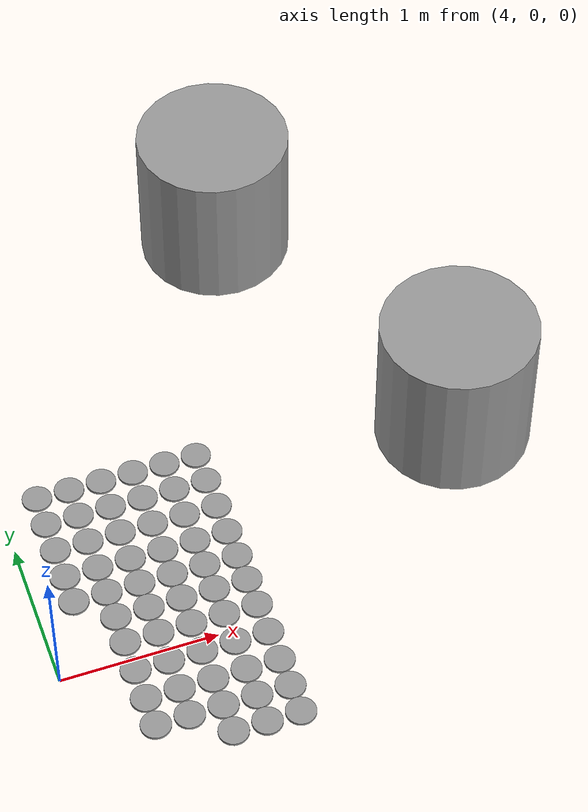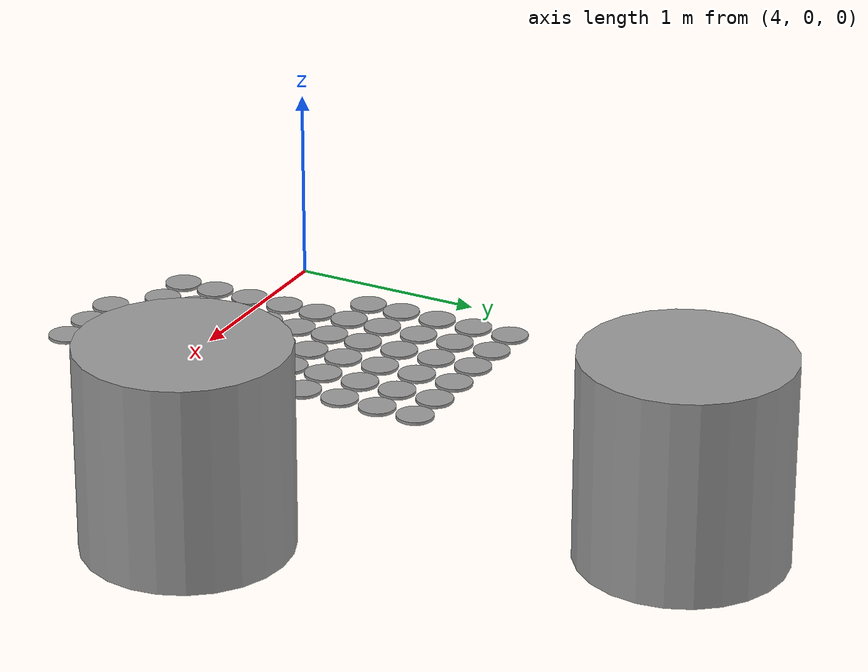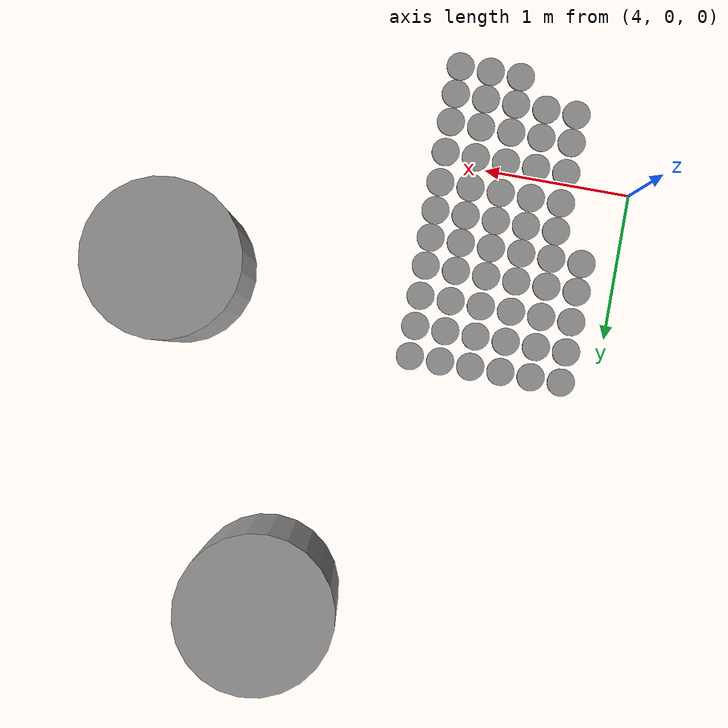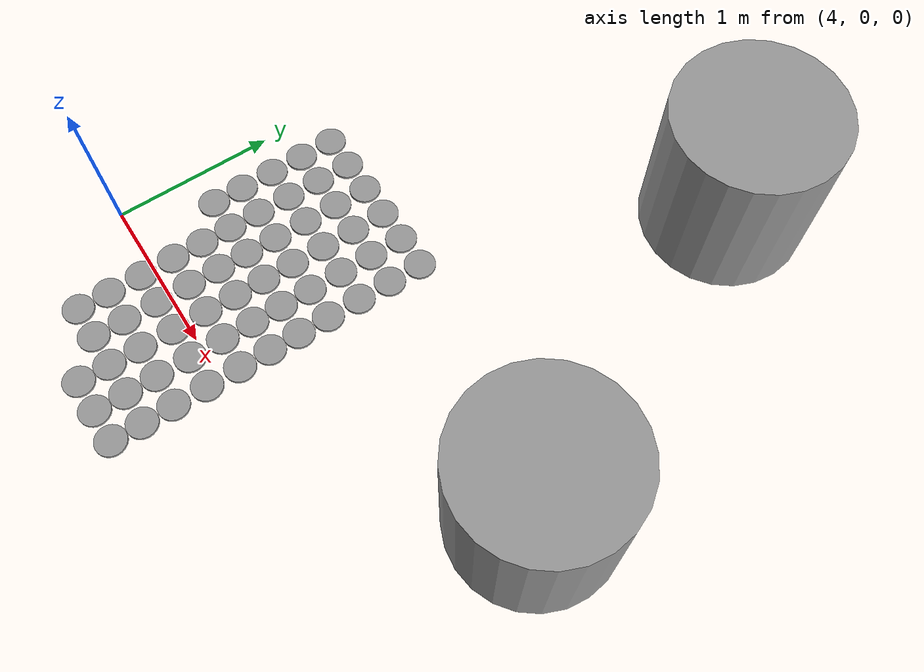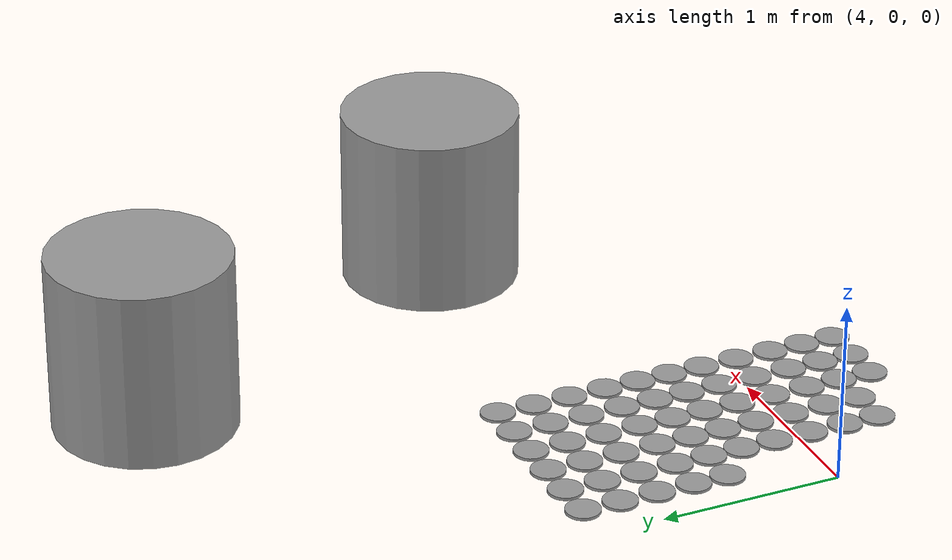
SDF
<sdf version="1.6">
 <world name="default">
  <model name="unit_cylinder_clone_220">
   <pose>4.24 0.515077 0.008117 0 -0 0</pose>
   <link name="link">
    <inertial>
     <mass>1</mass>
     <inertia><ixx>0.145833</ixx><ixy>0</ixy><ixz>0</ixz><iyy>0.145833</iyy><iyz>0</iyz><izz>0.125</izz></inertia>
    </inertial>
    <collision name="collision">
     <geometry><cylinder><radius>0.0950718</radius><length>0.0162339</length></cylinder></geometry>
     <max_contacts>5</max_contacts>
    </collision>
    <visual name="visual">
     <geometry><cylinder><radius>0.0950718</radius><length>0.0162339</length></cylinder></geometry>
     <material>
      <script><name>Gazebo/Grey</name><uri>file://media/materials/scripts/gazebo.material</uri></script>
     </material>
    </visual>
   </link>
  </model>
  <model name="unit_cylinder_clone_221">
   <pose>4.24 0.71 0.008117 0 -0 0</pose>
   <link name="link">
    <inertial>
     <mass>1</mass>
     <inertia><ixx>0.145833</ixx><ixy>0</ixy><ixz>0</ixz><iyy>0.145833</iyy><iyz>0</iyz><izz>0.125</izz></inertia>
    </inertial>
    <collision name="collision">
     <geometry><cylinder><radius>0.0950718</radius><length>0.0162339</length></cylinder></geometry>
     <max_contacts>5</max_contacts>
    </collision>
    <visual name="visual">
     <geometry><cylinder><radius>0.0950718</radius><length>0.0162339</length></cylinder></geometry>
     <material>
      <script><name>Gazebo/Grey</name><uri>file://media/materials/scripts/gazebo.material</uri></script>
     </material>
    </visual>
   </link>
  </model>
  <model name="unit_cylinder_clone_222">
   <pose>4.24 0.92 0.008117 0 -0 0</pose>
   <link name="link">
    <inertial>
     <mass>1</mass>
     <inertia><ixx>0.145833</ixx><ixy>0</ixy><ixz>0</ixz><iyy>0.145833</iyy><iyz>0</iyz><izz>0.125</izz></inertia>
    </inertial>
    <collision name="collision">
     <geometry><cylinder><radius>0.0950718</radius><length>0.0162339</length></cylinder></geometry>
     <max_contacts>5</max_contacts>
    </collision>
    <visual name="visual">
     <geometry><cylinder><radius>0.0950718</radius><length>0.0162339</length></cylinder></geometry>
     <material>
      <script><name>Gazebo/Grey</name><uri>file://media/materials/scripts/gazebo.material</uri></script>
     </material>
    </visual>
   </link>
  </model>
  <model name="unit_cylinder_clone_223">
   <pose>4.24 1.13 0.008117 0 -0 0</pose>
   <link name="link">
    <inertial>
     <mass>1</mass>
     <inertia><ixx>0.145833</ixx><ixy>0</ixy><ixz>0</ixz><iyy>0.145833</iyy><iyz>0</iyz><izz>0.125</izz></inertia>
    </inertial>
    <collision name="collision">
     <geometry><cylinder><radius>0.0950718</radius><length>0.0162339</length></cylinder></geometry>
     <max_contacts>5</max_contacts>
    </collision>
    <visual name="visual">
     <geometry><cylinder><radius>0.0950718</radius><length>0.0162339</length></cylinder></geometry>
     <material>
      <script><name>Gazebo/Grey</name><uri>file://media/materials/scripts/gazebo.material</uri></script>
     </material>
    </visual>
   </link>
  </model>
  <model name="unit_cylinder_clone_224">
   <pose>4.24 1.34 0.008117 0 -0 0</pose>
   <link name="link">
    <inertial>
     <mass>1</mass>
     <inertia><ixx>0.145833</ixx><ixy>0</ixy><ixz>0</ixz><iyy>0.145833</iyy><iyz>0</iyz><izz>0.125</izz></inertia>
    </inertial>
    <collision name="collision">
     <geometry><cylinder><radius>0.0950718</radius><length>0.0162339</length></cylinder></geometry>
     <max_contacts>5</max_contacts>
    </collision>
    <visual name="visual">
     <geometry><cylinder><radius>0.0950718</radius><length>0.0162339</length></cylinder></geometry>
     <material>
      <script><name>Gazebo/Grey</name><uri>file://media/materials/scripts/gazebo.material</uri></script>
     </material>
    </visual>
   </link>
  </model>
  <model name="unit_cylinder_clone_225">
   <pose>4.45 0.515077 0.008117 0 -0 0</pose>
   <link name="link">
    <inertial>
     <mass>1</mass>
     <inertia><ixx>0.145833</ixx><ixy>0</ixy><ixz>0</ixz><iyy>0.145833</iyy><iyz>0</iyz><izz>0.125</izz></inertia>
    </inertial>
    <collision name="collision">
     <geometry><cylinder><radius>0.0950718</radius><length>0.0162339</length></cylinder></geometry>
     <max_contacts>5</max_contacts>
    </collision>
    <visual name="visual">
     <geometry><cylinder><radius>0.0950718</radius><length>0.0162339</length></cylinder></geometry>
     <material>
      <script><name>Gazebo/Grey</name><uri>file://media/materials/scripts/gazebo.material</uri></script>
     </material>
    </visual>
   </link>
  </model>
  <model name="unit_cylinder_clone_226">
   <pose>4.45 0.71 0.008117 0 -0 0</pose>
   <link name="link">
    <inertial>
     <mass>1</mass>
     <inertia><ixx>0.145833</ixx><ixy>0</ixy><ixz>0</ixz><iyy>0.145833</iyy><iyz>0</iyz><izz>0.125</izz></inertia>
    </inertial>
    <collision name="collision">
     <geometry><cylinder><radius>0.0950718</radius><length>0.0162339</length></cylinder></geometry>
     <max_contacts>5</max_contacts>
    </collision>
    <visual name="visual">
     <geometry><cylinder><radius>0.0950718</radius><length>0.0162339</length></cylinder></geometry>
     <material>
      <script><name>Gazebo/Grey</name><uri>file://media/materials/scripts/gazebo.material</uri></script>
     </material>
    </visual>
   </link>
  </model>
  <model name="unit_cylinder_clone_227">
   <pose>4.45 0.92 0.008117 0 -0 0</pose>
   <link name="link">
    <inertial>
     <mass>1</mass>
     <inertia><ixx>0.145833</ixx><ixy>0</ixy><ixz>0</ixz><iyy>0.145833</iyy><iyz>0</iyz><izz>0.125</izz></inertia>
    </inertial>
    <collision name="collision">
     <geometry><cylinder><radius>0.0950718</radius><length>0.0162339</length></cylinder></geometry>
     <max_contacts>5</max_contacts>
    </collision>
    <visual name="visual">
     <geometry><cylinder><radius>0.0950718</radius><length>0.0162339</length></cylinder></geometry>
     <material>
      <script><name>Gazebo/Grey</name><uri>file://media/materials/scripts/gazebo.material</uri></script>
     </material>
    </visual>
   </link>
  </model>
  <model name="unit_cylinder_clone_228">
   <pose>4.45 1.13 0.008117 0 -0 0</pose>
   <link name="link">
    <inertial>
     <mass>1</mass>
     <inertia><ixx>0.145833</ixx><ixy>0</ixy><ixz>0</ixz><iyy>0.145833</iyy><iyz>0</iyz><izz>0.125</izz></inertia>
    </inertial>
    <collision name="collision">
     <geometry><cylinder><radius>0.0950718</radius><length>0.0162339</length></cylinder></geometry>
     <max_contacts>5</max_contacts>
    </collision>
    <visual name="visual">
     <geometry><cylinder><radius>0.0950718</radius><length>0.0162339</length></cylinder></geometry>
     <material>
      <script><name>Gazebo/Grey</name><uri>file://media/materials/scripts/gazebo.material</uri></script>
     </material>
    </visual>
   </link>
  </model>
  <model name="unit_cylinder_clone_229">
   <pose>4.45 1.34 0.008117 0 -0 0</pose>
   <link name="link">
    <inertial>
     <mass>1</mass>
     <inertia><ixx>0.145833</ixx><ixy>0</ixy><ixz>0</ixz><iyy>0.145833</iyy><iyz>0</iyz><izz>0.125</izz></inertia>
    </inertial>
    <collision name="collision">
     <geometry><cylinder><radius>0.0950718</radius><length>0.0162339</length></cylinder></geometry>
     <max_contacts>5</max_contacts>
    </collision>
    <visual name="visual">
     <geometry><cylinder><radius>0.0950718</radius><length>0.0162339</length></cylinder></geometry>
     <material>
      <script><name>Gazebo/Grey</name><uri>file://media/materials/scripts/gazebo.material</uri></script>
     </material>
    </visual>
   </link>
  </model>
  <model name="unit_cylinder_clone_230">
   <pose>4.66 0.515077 0.008117 0 -0 0</pose>
   <link name="link">
    <inertial>
     <mass>1</mass>
     <inertia><ixx>0.145833</ixx><ixy>0</ixy><ixz>0</ixz><iyy>0.145833</iyy><iyz>0</iyz><izz>0.125</izz></inertia>
    </inertial>
    <collision name="collision">
     <geometry><cylinder><radius>0.0950718</radius><length>0.0162339</length></cylinder></geometry>
     <max_contacts>5</max_contacts>
    </collision>
    <visual name="visual">
     <geometry><cylinder><radius>0.0950718</radius><length>0.0162339</length></cylinder></geometry>
     <material>
      <script><name>Gazebo/Grey</name><uri>file://media/materials/scripts/gazebo.material</uri></script>
     </material>
    </visual>
   </link>
  </model>
  <model name="unit_cylinder_clone_231">
   <pose>4.66 0.71 0.008117 0 -0 0</pose>
   <link name="link">
    <inertial>
     <mass>1</mass>
     <inertia><ixx>0.145833</ixx><ixy>0</ixy><ixz>0</ixz><iyy>0.145833</iyy><iyz>0</iyz><izz>0.125</izz></inertia>
    </inertial>
    <collision name="collision">
     <geometry><cylinder><radius>0.0950718</radius><length>0.0162339</length></cylinder></geometry>
     <max_contacts>5</max_contacts>
    </collision>
    <visual name="visual">
     <geometry><cylinder><radius>0.0950718</radius><length>0.0162339</length></cylinder></geometry>
     <material>
      <script><name>Gazebo/Grey</name><uri>file://media/materials/scripts/gazebo.material</uri></script>
     </material>
    </visual>
   </link>
  </model>
  <model name="unit_cylinder_clone_232">
   <pose>4.66 0.92 0.008117 0 -0 0</pose>
   <link name="link">
    <inertial>
     <mass>1</mass>
     <inertia><ixx>0.145833</ixx><ixy>0</ixy><ixz>0</ixz><iyy>0.145833</iyy><iyz>0</iyz><izz>0.125</izz></inertia>
    </inertial>
    <collision name="collision">
     <geometry><cylinder><radius>0.0950718</radius><length>0.0162339</length></cylinder></geometry>
     <max_contacts>5</max_contacts>
    </collision>
    <visual name="visual">
     <geometry><cylinder><radius>0.0950718</radius><length>0.0162339</length></cylinder></geometry>
     <material>
      <script><name>Gazebo/Grey</name><uri>file://media/materials/scripts/gazebo.material</uri></script>
     </material>
    </visual>
   </link>
  </model>
  <model name="unit_cylinder_clone_233">
   <pose>4.66 1.13 0.008117 0 -0 0</pose>
   <link name="link">
    <inertial>
     <mass>1</mass>
     <inertia><ixx>0.145833</ixx><ixy>0</ixy><ixz>0</ixz><iyy>0.145833</iyy><iyz>0</iyz><izz>0.125</izz></inertia>
    </inertial>
    <collision name="collision">
     <geometry><cylinder><radius>0.0950718</radius><length>0.0162339</length></cylinder></geometry>
     <max_contacts>5</max_contacts>
    </collision>
    <visual name="visual">
     <geometry><cylinder><radius>0.0950718</radius><length>0.0162339</length></cylinder></geometry>
     <material>
      <script><name>Gazebo/Grey</name><uri>file://media/materials/scripts/gazebo.material</uri></script>
     </material>
    </visual>
   </link>
  </model>
  <model name="unit_cylinder_clone_234">
   <pose>4.66 1.34 0.008117 0 -0 0</pose>
   <link name="link">
    <inertial>
     <mass>1</mass>
     <inertia><ixx>0.145833</ixx><ixy>0</ixy><ixz>0</ixz><iyy>0.145833</iyy><iyz>0</iyz><izz>0.125</izz></inertia>
    </inertial>
    <collision name="collision">
     <geometry><cylinder><radius>0.0950718</radius><length>0.0162339</length></cylinder></geometry>
     <max_contacts>5</max_contacts>
    </collision>
    <visual name="visual">
     <geometry><cylinder><radius>0.0950718</radius><length>0.0162339</length></cylinder></geometry>
     <material>
      <script><name>Gazebo/Grey</name><uri>file://media/materials/scripts/gazebo.material</uri></script>
     </material>
    </visual>
   </link>
  </model>
  <model name="unit_cylinder_clone_235">
   <pose>4.87 0.515077 0.008117 0 -0 0</pose>
   <link name="link">
    <inertial>
     <mass>1</mass>
     <inertia><ixx>0.145833</ixx><ixy>0</ixy><ixz>0</ixz><iyy>0.145833</iyy><iyz>0</iyz><izz>0.125</izz></inertia>
    </inertial>
    <collision name="collision">
     <geometry><cylinder><radius>0.0950718</radius><length>0.0162339</length></cylinder></geometry>
     <max_contacts>5</max_contacts>
    </collision>
    <visual name="visual">
     <geometry><cylinder><radius>0.0950718</radius><length>0.0162339</length></cylinder></geometry>
     <material>
      <script><name>Gazebo/Grey</name><uri>file://media/materials/scripts/gazebo.material</uri></script>
     </material>
    </visual>
   </link>
  </model>
  <model name="unit_cylinder_clone_236">
   <pose>4.87 0.71 0.008117 0 -0 0</pose>
   <link name="link">
    <inertial>
     <mass>1</mass>
     <inertia><ixx>0.145833</ixx><ixy>0</ixy><ixz>0</ixz><iyy>0.145833</iyy><iyz>0</iyz><izz>0.125</izz></inertia>
    </inertial>
    <collision name="collision">
     <geometry><cylinder><radius>0.0950718</radius><length>0.0162339</length></cylinder></geometry>
     <max_contacts>5</max_contacts>
    </collision>
    <visual name="visual">
     <geometry><cylinder><radius>0.0950718</radius><length>0.0162339</length></cylinder></geometry>
     <material>
      <script><name>Gazebo/Grey</name><uri>file://media/materials/scripts/gazebo.material</uri></script>
     </material>
    </visual>
   </link>
  </model>
  <model name="unit_cylinder_clone_237">
   <pose>4.87 0.92 0.008117 0 -0 0</pose>
   <link name="link">
    <inertial>
     <mass>1</mass>
     <inertia><ixx>0.145833</ixx><ixy>0</ixy><ixz>0</ixz><iyy>0.145833</iyy><iyz>0</iyz><izz>0.125</izz></inertia>
    </inertial>
    <collision name="collision">
     <geometry><cylinder><radius>0.0950718</radius><length>0.0162339</length></cylinder></geometry>
     <max_contacts>5</max_contacts>
    </collision>
    <visual name="visual">
     <geometry><cylinder><radius>0.0950718</radius><length>0.0162339</length></cylinder></geometry>
     <material>
      <script><name>Gazebo/Grey</name><uri>file://media/materials/scripts/gazebo.material</uri></script>
     </material>
    </visual>
   </link>
  </model>
  <model name="unit_cylinder_clone_238">
   <pose>4.87 1.13 0.008117 0 -0 0</pose>
   <link name="link">
    <inertial>
     <mass>1</mass>
     <inertia><ixx>0.145833</ixx><ixy>0</ixy><ixz>0</ixz><iyy>0.145833</iyy><iyz>0</iyz><izz>0.125</izz></inertia>
    </inertial>
    <collision name="collision">
     <geometry><cylinder><radius>0.0950718</radius><length>0.0162339</length></cylinder></geometry>
     <max_contacts>5</max_contacts>
    </collision>
    <visual name="visual">
     <geometry><cylinder><radius>0.0950718</radius><length>0.0162339</length></cylinder></geometry>
     <material>
      <script><name>Gazebo/Grey</name><uri>file://media/materials/scripts/gazebo.material</uri></script>
     </material>
    </visual>
   </link>
  </model>
  <model name="unit_cylinder_clone_239">
   <pose>4.87 1.34 0.008117 0 -0 0</pose>
   <link name="link">
    <inertial>
     <mass>1</mass>
     <inertia><ixx>0.145833</ixx><ixy>0</ixy><ixz>0</ixz><iyy>0.145833</iyy><iyz>0</iyz><izz>0.125</izz></inertia>
    </inertial>
    <collision name="collision">
     <geometry><cylinder><radius>0.0950718</radius><length>0.0162339</length></cylinder></geometry>
     <max_contacts>5</max_contacts>
    </collision>
    <visual name="visual">
     <geometry><cylinder><radius>0.0950718</radius><length>0.0162339</length></cylinder></geometry>
     <material>
      <script><name>Gazebo/Grey</name><uri>file://media/materials/scripts/gazebo.material</uri></script>
     </material>
    </visual>
   </link>
  </model>
  <model name="unit_cylinder_clone_240">
   <pose>5.08 0.515077 0.008117 0 -0 0</pose>
   <link name="link">
    <inertial>
     <mass>1</mass>
     <inertia><ixx>0.145833</ixx><ixy>0</ixy><ixz>0</ixz><iyy>0.145833</iyy><iyz>0</iyz><izz>0.125</izz></inertia>
    </inertial>
    <collision name="collision">
     <geometry><cylinder><radius>0.0950718</radius><length>0.0162339</length></cylinder></geometry>
     <max_contacts>5</max_contacts>
    </collision>
    <visual name="visual">
     <geometry><cylinder><radius>0.0950718</radius><length>0.0162339</length></cylinder></geometry>
     <material>
      <script><name>Gazebo/Grey</name><uri>file://media/materials/scripts/gazebo.material</uri></script>
     </material>
    </visual>
   </link>
  </model>
  <model name="unit_cylinder_clone_241">
   <pose>5.08 0.71 0.008117 0 -0 0</pose>
   <link name="link">
    <inertial>
     <mass>1</mass>
     <inertia><ixx>0.145833</ixx><ixy>0</ixy><ixz>0</ixz><iyy>0.145833</iyy><iyz>0</iyz><izz>0.125</izz></inertia>
    </inertial>
    <collision name="collision">
     <geometry><cylinder><radius>0.0950718</radius><length>0.0162339</length></cylinder></geometry>
     <max_contacts>5</max_contacts>
    </collision>
    <visual name="visual">
     <geometry><cylinder><radius>0.0950718</radius><length>0.0162339</length></cylinder></geometry>
     <material>
      <script><name>Gazebo/Grey</name><uri>file://media/materials/scripts/gazebo.material</uri></script>
     </material>
    </visual>
   </link>
  </model>
  <model name="unit_cylinder_clone_242">
   <pose>5.08 0.92 0.008117 0 -0 0</pose>
   <link name="link">
    <inertial>
     <mass>1</mass>
     <inertia><ixx>0.145833</ixx><ixy>0</ixy><ixz>0</ixz><iyy>0.145833</iyy><iyz>0</iyz><izz>0.125</izz></inertia>
    </inertial>
    <collision name="collision">
     <geometry><cylinder><radius>0.0950718</radius><length>0.0162339</length></cylinder></geometry>
     <max_contacts>5</max_contacts>
    </collision>
    <visual name="visual">
     <geometry><cylinder><radius>0.0950718</radius><length>0.0162339</length></cylinder></geometry>
     <material>
      <script><name>Gazebo/Grey</name><uri>file://media/materials/scripts/gazebo.material</uri></script>
     </material>
    </visual>
   </link>
  </model>
  <model name="unit_cylinder_clone_243">
   <pose>5.08 1.13 0.008117 0 -0 0</pose>
   <link name="link">
    <inertial>
     <mass>1</mass>
     <inertia><ixx>0.145833</ixx><ixy>0</ixy><ixz>0</ixz><iyy>0.145833</iyy><iyz>0</iyz><izz>0.125</izz></inertia>
    </inertial>
    <collision name="collision">
     <geometry><cylinder><radius>0.0950718</radius><length>0.0162339</length></cylinder></geometry>
     <max_contacts>5</max_contacts>
    </collision>
    <visual name="visual">
     <geometry><cylinder><radius>0.0950718</radius><length>0.0162339</length></cylinder></geometry>
     <material>
      <script><name>Gazebo/Grey</name><uri>file://media/materials/scripts/gazebo.material</uri></script>
     </material>
    </visual>
   </link>
  </model>
  <model name="unit_cylinder_clone_244">
   <pose>5.08 1.34 0.008117 0 -0 0</pose>
   <link name="link">
    <inertial>
     <mass>1</mass>
     <inertia><ixx>0.145833</ixx><ixy>0</ixy><ixz>0</ixz><iyy>0.145833</iyy><iyz>0</iyz><izz>0.125</izz></inertia>
    </inertial>
    <collision name="collision">
     <geometry><cylinder><radius>0.0950718</radius><length>0.0162339</length></cylinder></geometry>
     <max_contacts>5</max_contacts>
    </collision>
    <visual name="visual">
     <geometry><cylinder><radius>0.0950718</radius><length>0.0162339</length></cylinder></geometry>
     <material>
      <script><name>Gazebo/Grey</name><uri>file://media/materials/scripts/gazebo.material</uri></script>
     </material>
    </visual>
   </link>
  </model>
  <model name="unit_cylinder_clone_245">
   <pose>5.29 0.515077 0.008117 0 -0 0</pose>
   <link name="link">
    <inertial>
     <mass>1</mass>
     <inertia><ixx>0.145833</ixx><ixy>0</ixy><ixz>0</ixz><iyy>0.145833</iyy><iyz>0</iyz><izz>0.125</izz></inertia>
    </inertial>
    <collision name="collision">
     <geometry><cylinder><radius>0.0950718</radius><length>0.0162339</length></cylinder></geometry>
     <max_contacts>5</max_contacts>
    </collision>
    <visual name="visual">
     <geometry><cylinder><radius>0.0950718</radius><length>0.0162339</length></cylinder></geometry>
     <material>
      <script><name>Gazebo/Grey</name><uri>file://media/materials/scripts/gazebo.material</uri></script>
     </material>
    </visual>
   </link>
  </model>
  <model name="unit_cylinder_clone_246">
   <pose>5.29 0.71 0.008117 0 -0 0</pose>
   <link name="link">
    <inertial>
     <mass>1</mass>
     <inertia><ixx>0.145833</ixx><ixy>0</ixy><ixz>0</ixz><iyy>0.145833</iyy><iyz>0</iyz><izz>0.125</izz></inertia>
    </inertial>
    <collision name="collision">
     <geometry><cylinder><radius>0.0950718</radius><length>0.0162339</length></cylinder></geometry>
     <max_contacts>5</max_contacts>
    </collision>
    <visual name="visual">
     <geometry><cylinder><radius>0.0950718</radius><length>0.0162339</length></cylinder></geometry>
     <material>
      <script><name>Gazebo/Grey</name><uri>file://media/materials/scripts/gazebo.material</uri></script>
     </material>
    </visual>
   </link>
  </model>
  <model name="unit_cylinder_clone_247">
   <pose>5.29 0.92 0.008117 0 -0 0</pose>
   <link name="link">
    <inertial>
     <mass>1</mass>
     <inertia><ixx>0.145833</ixx><ixy>0</ixy><ixz>0</ixz><iyy>0.145833</iyy><iyz>0</iyz><izz>0.125</izz></inertia>
    </inertial>
    <collision name="collision">
     <geometry><cylinder><radius>0.0950718</radius><length>0.0162339</length></cylinder></geometry>
     <max_contacts>5</max_contacts>
    </collision>
    <visual name="visual">
     <geometry><cylinder><radius>0.0950718</radius><length>0.0162339</length></cylinder></geometry>
     <material>
      <script><name>Gazebo/Grey</name><uri>file://media/materials/scripts/gazebo.material</uri></script>
     </material>
    </visual>
   </link>
  </model>
  <model name="unit_cylinder_clone_248">
   <pose>5.29 1.13 0.008117 0 -0 0</pose>
   <link name="link">
    <inertial>
     <mass>1</mass>
     <inertia><ixx>0.145833</ixx><ixy>0</ixy><ixz>0</ixz><iyy>0.145833</iyy><iyz>0</iyz><izz>0.125</izz></inertia>
    </inertial>
    <collision name="collision">
     <geometry><cylinder><radius>0.0950718</radius><length>0.0162339</length></cylinder></geometry>
     <max_contacts>5</max_contacts>
    </collision>
    <visual name="visual">
     <geometry><cylinder><radius>0.0950718</radius><length>0.0162339</length></cylinder></geometry>
     <material>
      <script><name>Gazebo/Grey</name><uri>file://media/materials/scripts/gazebo.material</uri></script>
     </material>
    </visual>
   </link>
  </model>
  <model name="unit_cylinder_clone_249">
   <pose>5.29 1.34 0.008117 0 -0 0</pose>
   <link name="link">
    <inertial>
     <mass>1</mass>
     <inertia><ixx>0.145833</ixx><ixy>0</ixy><ixz>0</ixz><iyy>0.145833</iyy><iyz>0</iyz><izz>0.125</izz></inertia>
    </inertial>
    <collision name="collision">
     <geometry><cylinder><radius>0.0950718</radius><length>0.0162339</length></cylinder></geometry>
     <max_contacts>5</max_contacts>
    </collision>
    <visual name="visual">
     <geometry><cylinder><radius>0.0950718</radius><length>0.0162339</length></cylinder></geometry>
     <material>
      <script><name>Gazebo/Grey</name><uri>file://media/materials/scripts/gazebo.material</uri></script>
     </material>
    </visual>
   </link>
  </model>
  <model name="unit_cylinder_clone_475">
   <pose>4.45 -0.484923 0.008117 0 -0 0</pose>
   <link name="link">
    <inertial>
     <mass>1</mass>
     <inertia><ixx>0.145833</ixx><ixy>0</ixy><ixz>0</ixz><iyy>0.145833</iyy><iyz>0</iyz><izz>0.125</izz></inertia>
    </inertial>
    <collision name="collision">
     <geometry><cylinder><radius>0.0950718</radius><length>0.0162339</length></cylinder></geometry>
     <max_contacts>5</max_contacts>
    </collision>
    <visual name="visual">
     <geometry><cylinder><radius>0.0950718</radius><length>0.0162339</length></cylinder></geometry>
     <material>
      <script><name>Gazebo/Grey</name><uri>file://media/materials/scripts/gazebo.material</uri></script>
     </material>
    </visual>
   </link>
  </model>
  <model name="unit_cylinder_clone_476">
   <pose>4.45 -0.29 0.008117 0 -0 0</pose>
   <link name="link">
    <inertial>
     <mass>1</mass>
     <inertia><ixx>0.145833</ixx><ixy>0</ixy><ixz>0</ixz><iyy>0.145833</iyy><iyz>0</iyz><izz>0.125</izz></inertia>
    </inertial>
    <collision name="collision">
     <geometry><cylinder><radius>0.0950718</radius><length>0.0162339</length></cylinder></geometry>
     <max_contacts>5</max_contacts>
    </collision>
    <visual name="visual">
     <geometry><cylinder><radius>0.0950718</radius><length>0.0162339</length></cylinder></geometry>
     <material>
      <script><name>Gazebo/Grey</name><uri>file://media/materials/scripts/gazebo.material</uri></script>
     </material>
    </visual>
   </link>
  </model>
  <model name="unit_cylinder_clone_477">
   <pose>4.45 -0.08 0.008117 0 -0 0</pose>
   <link name="link">
    <inertial>
     <mass>1</mass>
     <inertia><ixx>0.145833</ixx><ixy>0</ixy><ixz>0</ixz><iyy>0.145833</iyy><iyz>0</iyz><izz>0.125</izz></inertia>
    </inertial>
    <collision name="collision">
     <geometry><cylinder><radius>0.0950718</radius><length>0.0162339</length></cylinder></geometry>
     <max_contacts>5</max_contacts>
    </collision>
    <visual name="visual">
     <geometry><cylinder><radius>0.0950718</radius><length>0.0162339</length></cylinder></geometry>
     <material>
      <script><name>Gazebo/Grey</name><uri>file://media/materials/scripts/gazebo.material</uri></script>
     </material>
    </visual>
   </link>
  </model>
  <model name="unit_cylinder_clone_478">
   <pose>4.45 0.13 0.008117 0 -0 0</pose>
   <link name="link">
    <inertial>
     <mass>1</mass>
     <inertia><ixx>0.145833</ixx><ixy>0</ixy><ixz>0</ixz><iyy>0.145833</iyy><iyz>0</iyz><izz>0.125</izz></inertia>
    </inertial>
    <collision name="collision">
     <geometry><cylinder><radius>0.0950718</radius><length>0.0162339</length></cylinder></geometry>
     <max_contacts>5</max_contacts>
    </collision>
    <visual name="visual">
     <geometry><cylinder><radius>0.0950718</radius><length>0.0162339</length></cylinder></geometry>
     <material>
      <script><name>Gazebo/Grey</name><uri>file://media/materials/scripts/gazebo.material</uri></script>
     </material>
    </visual>
   </link>
  </model>
  <model name="unit_cylinder_clone_479">
   <pose>4.45 0.324923 0.008117 -0 -0 -0</pose>
   <link name="link">
    <inertial>
     <mass>1</mass>
     <inertia><ixx>0.145833</ixx><ixy>0</ixy><ixz>0</ixz><iyy>0.145833</iyy><iyz>0</iyz><izz>0.125</izz></inertia>
    </inertial>
    <collision name="collision">
     <geometry><cylinder><radius>0.0950718</radius><length>0.0162339</length></cylinder></geometry>
     <max_contacts>5</max_contacts>
    </collision>
    <visual name="visual">
     <geometry><cylinder><radius>0.0950718</radius><length>0.0162339</length></cylinder></geometry>
     <material>
      <script><name>Gazebo/Grey</name><uri>file://media/materials/scripts/gazebo.material</uri></script>
     </material>
    </visual>
   </link>
  </model>
  <model name="unit_cylinder_clone_480">
   <pose>4.66 -0.484923 0.008117 0 -0 0</pose>
   <link name="link">
    <inertial>
     <mass>1</mass>
     <inertia><ixx>0.145833</ixx><ixy>0</ixy><ixz>0</ixz><iyy>0.145833</iyy><iyz>0</iyz><izz>0.125</izz></inertia>
    </inertial>
    <collision name="collision">
     <geometry><cylinder><radius>0.0950718</radius><length>0.0162339</length></cylinder></geometry>
     <max_contacts>5</max_contacts>
    </collision>
    <visual name="visual">
     <geometry><cylinder><radius>0.0950718</radius><length>0.0162339</length></cylinder></geometry>
     <material>
      <script><name>Gazebo/Grey</name><uri>file://media/materials/scripts/gazebo.material</uri></script>
     </material>
    </visual>
   </link>
  </model>
  <model name="unit_cylinder_clone_481">
   <pose>4.66 -0.29 0.008117 0 -0 0</pose>
   <link name="link">
    <inertial>
     <mass>1</mass>
     <inertia><ixx>0.145833</ixx><ixy>0</ixy><ixz>0</ixz><iyy>0.145833</iyy><iyz>0</iyz><izz>0.125</izz></inertia>
    </inertial>
    <collision name="collision">
     <geometry><cylinder><radius>0.0950718</radius><length>0.0162339</length></cylinder></geometry>
     <max_contacts>5</max_contacts>
    </collision>
    <visual name="visual">
     <geometry><cylinder><radius>0.0950718</radius><length>0.0162339</length></cylinder></geometry>
     <material>
      <script><name>Gazebo/Grey</name><uri>file://media/materials/scripts/gazebo.material</uri></script>
     </material>
    </visual>
   </link>
  </model>
  <model name="unit_cylinder_clone_482">
   <pose>4.66 -0.08 0.008117 0 -0 0</pose>
   <link name="link">
    <inertial>
     <mass>1</mass>
     <inertia><ixx>0.145833</ixx><ixy>0</ixy><ixz>0</ixz><iyy>0.145833</iyy><iyz>0</iyz><izz>0.125</izz></inertia>
    </inertial>
    <collision name="collision">
     <geometry><cylinder><radius>0.0950718</radius><length>0.0162339</length></cylinder></geometry>
     <max_contacts>5</max_contacts>
    </collision>
    <visual name="visual">
     <geometry><cylinder><radius>0.0950718</radius><length>0.0162339</length></cylinder></geometry>
     <material>
      <script><name>Gazebo/Grey</name><uri>file://media/materials/scripts/gazebo.material</uri></script>
     </material>
    </visual>
   </link>
  </model>
  <model name="unit_cylinder_clone_483">
   <pose>4.66 0.13 0.008117 0 -0 0</pose>
   <link name="link">
    <inertial>
     <mass>1</mass>
     <inertia><ixx>0.145833</ixx><ixy>0</ixy><ixz>0</ixz><iyy>0.145833</iyy><iyz>0</iyz><izz>0.125</izz></inertia>
    </inertial>
    <collision name="collision">
     <geometry><cylinder><radius>0.0950718</radius><length>0.0162339</length></cylinder></geometry>
     <max_contacts>5</max_contacts>
    </collision>
    <visual name="visual">
     <geometry><cylinder><radius>0.0950718</radius><length>0.0162339</length></cylinder></geometry>
     <material>
      <script><name>Gazebo/Grey</name><uri>file://media/materials/scripts/gazebo.material</uri></script>
     </material>
    </visual>
   </link>
  </model>
  <model name="unit_cylinder_clone_484">
   <pose>4.66 0.324923 0.008117 -0 -0 -0</pose>
   <link name="link">
    <inertial>
     <mass>1</mass>
     <inertia><ixx>0.145833</ixx><ixy>0</ixy><ixz>0</ixz><iyy>0.145833</iyy><iyz>0</iyz><izz>0.125</izz></inertia>
    </inertial>
    <collision name="collision">
     <geometry><cylinder><radius>0.0950718</radius><length>0.0162339</length></cylinder></geometry>
     <max_contacts>5</max_contacts>
    </collision>
    <visual name="visual">
     <geometry><cylinder><radius>0.0950718</radius><length>0.0162339</length></cylinder></geometry>
     <material>
      <script><name>Gazebo/Grey</name><uri>file://media/materials/scripts/gazebo.material</uri></script>
     </material>
    </visual>
   </link>
  </model>
  <model name="unit_cylinder_clone_485">
   <pose>4.87 -0.484923 0.008117 0 -0 0</pose>
   <link name="link">
    <inertial>
     <mass>1</mass>
     <inertia><ixx>0.145833</ixx><ixy>0</ixy><ixz>0</ixz><iyy>0.145833</iyy><iyz>0</iyz><izz>0.125</izz></inertia>
    </inertial>
    <collision name="collision">
     <geometry><cylinder><radius>0.0950718</radius><length>0.0162339</length></cylinder></geometry>
     <max_contacts>5</max_contacts>
    </collision>
    <visual name="visual">
     <geometry><cylinder><radius>0.0950718</radius><length>0.0162339</length></cylinder></geometry>
     <material>
      <script><name>Gazebo/Grey</name><uri>file://media/materials/scripts/gazebo.material</uri></script>
     </material>
    </visual>
   </link>
  </model>
  <model name="unit_cylinder_clone_486">
   <pose>4.87 -0.29 0.008117 0 -0 0</pose>
   <link name="link">
    <inertial>
     <mass>1</mass>
     <inertia><ixx>0.145833</ixx><ixy>0</ixy><ixz>0</ixz><iyy>0.145833</iyy><iyz>0</iyz><izz>0.125</izz></inertia>
    </inertial>
    <collision name="collision">
     <geometry><cylinder><radius>0.0950718</radius><length>0.0162339</length></cylinder></geometry>
     <max_contacts>5</max_contacts>
    </collision>
    <visual name="visual">
     <geometry><cylinder><radius>0.0950718</radius><length>0.0162339</length></cylinder></geometry>
     <material>
      <script><name>Gazebo/Grey</name><uri>file://media/materials/scripts/gazebo.material</uri></script>
     </material>
    </visual>
   </link>
  </model>
  <model name="unit_cylinder_clone_487">
   <pose>4.87 -0.08 0.008117 0 -0 0</pose>
   <link name="link">
    <inertial>
     <mass>1</mass>
     <inertia><ixx>0.145833</ixx><ixy>0</ixy><ixz>0</ixz><iyy>0.145833</iyy><iyz>0</iyz><izz>0.125</izz></inertia>
    </inertial>
    <collision name="collision">
     <geometry><cylinder><radius>0.0950718</radius><length>0.0162339</length></cylinder></geometry>
     <max_contacts>5</max_contacts>
    </collision>
    <visual name="visual">
     <geometry><cylinder><radius>0.0950718</radius><length>0.0162339</length></cylinder></geometry>
     <material>
      <script><name>Gazebo/Grey</name><uri>file://media/materials/scripts/gazebo.material</uri></script>
     </material>
    </visual>
   </link>
  </model>
  <model name="unit_cylinder_clone_488">
   <pose>4.87 0.13 0.008117 0 -0 0</pose>
   <link name="link">
    <inertial>
     <mass>1</mass>
     <inertia><ixx>0.145833</ixx><ixy>0</ixy><ixz>0</ixz><iyy>0.145833</iyy><iyz>0</iyz><izz>0.125</izz></inertia>
    </inertial>
    <collision name="collision">
     <geometry><cylinder><radius>0.0950718</radius><length>0.0162339</length></cylinder></geometry>
     <max_contacts>5</max_contacts>
    </collision>
    <visual name="visual">
     <geometry><cylinder><radius>0.0950718</radius><length>0.0162339</length></cylinder></geometry>
     <material>
      <script><name>Gazebo/Grey</name><uri>file://media/materials/scripts/gazebo.material</uri></script>
     </material>
    </visual>
   </link>
  </model>
  <model name="unit_cylinder_clone_489">
   <pose>4.87 0.324923 0.008117 -0 -0 -0</pose>
   <link name="link">
    <inertial>
     <mass>1</mass>
     <inertia><ixx>0.145833</ixx><ixy>0</ixy><ixz>0</ixz><iyy>0.145833</iyy><iyz>0</iyz><izz>0.125</izz></inertia>
    </inertial>
    <collision name="collision">
     <geometry><cylinder><radius>0.0950718</radius><length>0.0162339</length></cylinder></geometry>
     <max_contacts>5</max_contacts>
    </collision>
    <visual name="visual">
     <geometry><cylinder><radius>0.0950718</radius><length>0.0162339</length></cylinder></geometry>
     <material>
      <script><name>Gazebo/Grey</name><uri>file://media/materials/scripts/gazebo.material</uri></script>
     </material>
    </visual>
   </link>
  </model>
  <model name="unit_cylinder_clone_490">
   <pose>5.08 -0.484923 0.008117 0 -0 0</pose>
   <link name="link">
    <inertial>
     <mass>1</mass>
     <inertia><ixx>0.145833</ixx><ixy>0</ixy><ixz>0</ixz><iyy>0.145833</iyy><iyz>0</iyz><izz>0.125</izz></inertia>
    </inertial>
    <collision name="collision">
     <geometry><cylinder><radius>0.0950718</radius><length>0.0162339</length></cylinder></geometry>
     <max_contacts>5</max_contacts>
    </collision>
    <visual name="visual">
     <geometry><cylinder><radius>0.0950718</radius><length>0.0162339</length></cylinder></geometry>
     <material>
      <script><name>Gazebo/Grey</name><uri>file://media/materials/scripts/gazebo.material</uri></script>
     </material>
    </visual>
   </link>
  </model>
  <model name="unit_cylinder_clone_491">
   <pose>5.08 -0.29 0.008117 0 -0 0</pose>
   <link name="link">
    <inertial>
     <mass>1</mass>
     <inertia><ixx>0.145833</ixx><ixy>0</ixy><ixz>0</ixz><iyy>0.145833</iyy><iyz>0</iyz><izz>0.125</izz></inertia>
    </inertial>
    <collision name="collision">
     <geometry><cylinder><radius>0.0950718</radius><length>0.0162339</length></cylinder></geometry>
     <max_contacts>5</max_contacts>
    </collision>
    <visual name="visual">
     <geometry><cylinder><radius>0.0950718</radius><length>0.0162339</length></cylinder></geometry>
     <material>
      <script><name>Gazebo/Grey</name><uri>file://media/materials/scripts/gazebo.material</uri></script>
     </material>
    </visual>
   </link>
  </model>
  <model name="unit_cylinder_clone_492">
   <pose>5.08 -0.08 0.008117 0 -0 0</pose>
   <link name="link">
    <inertial>
     <mass>1</mass>
     <inertia><ixx>0.145833</ixx><ixy>0</ixy><ixz>0</ixz><iyy>0.145833</iyy><iyz>0</iyz><izz>0.125</izz></inertia>
    </inertial>
    <collision name="collision">
     <geometry><cylinder><radius>0.0950718</radius><length>0.0162339</length></cylinder></geometry>
     <max_contacts>5</max_contacts>
    </collision>
    <visual name="visual">
     <geometry><cylinder><radius>0.0950718</radius><length>0.0162339</length></cylinder></geometry>
     <material>
      <script><name>Gazebo/Grey</name><uri>file://media/materials/scripts/gazebo.material</uri></script>
     </material>
    </visual>
   </link>
  </model>
  <model name="unit_cylinder_clone_493">
   <pose>5.08 0.13 0.008117 0 -0 0</pose>
   <link name="link">
    <inertial>
     <mass>1</mass>
     <inertia><ixx>0.145833</ixx><ixy>0</ixy><ixz>0</ixz><iyy>0.145833</iyy><iyz>0</iyz><izz>0.125</izz></inertia>
    </inertial>
    <collision name="collision">
     <geometry><cylinder><radius>0.0950718</radius><length>0.0162339</length></cylinder></geometry>
     <max_contacts>5</max_contacts>
    </collision>
    <visual name="visual">
     <geometry><cylinder><radius>0.0950718</radius><length>0.0162339</length></cylinder></geometry>
     <material>
      <script><name>Gazebo/Grey</name><uri>file://media/materials/scripts/gazebo.material</uri></script>
     </material>
    </visual>
   </link>
  </model>
  <model name="unit_cylinder_clone_494">
   <pose>5.08 0.324923 0.008117 -0 -0 -0</pose>
   <link name="link">
    <inertial>
     <mass>1</mass>
     <inertia><ixx>0.145833</ixx><ixy>0</ixy><ixz>0</ixz><iyy>0.145833</iyy><iyz>0</iyz><izz>0.125</izz></inertia>
    </inertial>
    <collision name="collision">
     <geometry><cylinder><radius>0.0950718</radius><length>0.0162339</length></cylinder></geometry>
     <max_contacts>5</max_contacts>
    </collision>
    <visual name="visual">
     <geometry><cylinder><radius>0.0950718</radius><length>0.0162339</length></cylinder></geometry>
     <material>
      <script><name>Gazebo/Grey</name><uri>file://media/materials/scripts/gazebo.material</uri></script>
     </material>
    </visual>
   </link>
  </model>
  <model name="unit_cylinder_clone_495">
   <pose>5.29 -0.484923 0.008117 0 -0 0</pose>
   <link name="link">
    <inertial>
     <mass>1</mass>
     <inertia><ixx>0.145833</ixx><ixy>0</ixy><ixz>0</ixz><iyy>0.145833</iyy><iyz>0</iyz><izz>0.125</izz></inertia>
    </inertial>
    <collision name="collision">
     <geometry><cylinder><radius>0.0950718</radius><length>0.0162339</length></cylinder></geometry>
     <max_contacts>5</max_contacts>
    </collision>
    <visual name="visual">
     <geometry><cylinder><radius>0.0950718</radius><length>0.0162339</length></cylinder></geometry>
     <material>
      <script><name>Gazebo/Grey</name><uri>file://media/materials/scripts/gazebo.material</uri></script>
     </material>
    </visual>
   </link>
  </model>
  <model name="unit_cylinder_clone_496">
   <pose>5.29 -0.29 0.008117 0 -0 0</pose>
   <link name="link">
    <inertial>
     <mass>1</mass>
     <inertia><ixx>0.145833</ixx><ixy>0</ixy><ixz>0</ixz><iyy>0.145833</iyy><iyz>0</iyz><izz>0.125</izz></inertia>
    </inertial>
    <collision name="collision">
     <geometry><cylinder><radius>0.0950718</radius><length>0.0162339</length></cylinder></geometry>
     <max_contacts>5</max_contacts>
    </collision>
    <visual name="visual">
     <geometry><cylinder><radius>0.0950718</radius><length>0.0162339</length></cylinder></geometry>
     <material>
      <script><name>Gazebo/Grey</name><uri>file://media/materials/scripts/gazebo.material</uri></script>
     </material>
    </visual>
   </link>
  </model>
  <model name="unit_cylinder_clone_497">
   <pose>5.29 -0.08 0.008117 0 -0 0</pose>
   <link name="link">
    <inertial>
     <mass>1</mass>
     <inertia><ixx>0.145833</ixx><ixy>0</ixy><ixz>0</ixz><iyy>0.145833</iyy><iyz>0</iyz><izz>0.125</izz></inertia>
    </inertial>
    <collision name="collision">
     <geometry><cylinder><radius>0.0950718</radius><length>0.0162339</length></cylinder></geometry>
     <max_contacts>5</max_contacts>
    </collision>
    <visual name="visual">
     <geometry><cylinder><radius>0.0950718</radius><length>0.0162339</length></cylinder></geometry>
     <material>
      <script><name>Gazebo/Grey</name><uri>file://media/materials/scripts/gazebo.material</uri></script>
     </material>
    </visual>
   </link>
  </model>
  <model name="unit_cylinder_clone_498">
   <pose>5.29 0.13 0.008117 0 -0 0</pose>
   <link name="link">
    <inertial>
     <mass>1</mass>
     <inertia><ixx>0.145833</ixx><ixy>0</ixy><ixz>0</ixz><iyy>0.145833</iyy><iyz>0</iyz><izz>0.125</izz></inertia>
    </inertial>
    <collision name="collision">
     <geometry><cylinder><radius>0.0950718</radius><length>0.0162339</length></cylinder></geometry>
     <max_contacts>5</max_contacts>
    </collision>
    <visual name="visual">
     <geometry><cylinder><radius>0.0950718</radius><length>0.0162339</length></cylinder></geometry>
     <material>
      <script><name>Gazebo/Grey</name><uri>file://media/materials/scripts/gazebo.material</uri></script>
     </material>
    </visual>
   </link>
  </model>
  <model name="unit_cylinder_clone_499">
   <pose>5.29 0.324923 0.008117 -0 -0 -0</pose>
   <link name="link">
    <inertial>
     <mass>1</mass>
     <inertia><ixx>0.145833</ixx><ixy>0</ixy><ixz>0</ixz><iyy>0.145833</iyy><iyz>0</iyz><izz>0.125</izz></inertia>
    </inertial>
    <collision name="collision">
     <geometry><cylinder><radius>0.0950718</radius><length>0.0162339</length></cylinder></geometry>
     <max_contacts>5</max_contacts>
    </collision>
    <visual name="visual">
     <geometry><cylinder><radius>0.0950718</radius><length>0.0162339</length></cylinder></geometry>
     <material>
      <script><name>Gazebo/Grey</name><uri>file://media/materials/scripts/gazebo.material</uri></script>
     </material>
    </visual>
   </link>
  </model>
  <model name="unit_cylinder_clone_739">
   <pose>4.87 -0.675077 0.008117 -0 -0 -0</pose>
   <link name="link">
    <inertial>
     <mass>1</mass>
     <inertia><ixx>0.145833</ixx><ixy>0</ixy><ixz>0</ixz><iyy>0.145833</iyy><iyz>0</iyz><izz>0.125</izz></inertia>
    </inertial>
    <collision name="collision">
     <geometry><cylinder><radius>0.0950718</radius><length>0.0162339</length></cylinder></geometry>
     <max_contacts>5</max_contacts>
    </collision>
    <visual name="visual">
     <geometry><cylinder><radius>0.0950718</radius><length>0.0162339</length></cylinder></geometry>
     <material>
      <script><name>Gazebo/Grey</name><uri>file://media/materials/scripts/gazebo.material</uri></script>
     </material>
    </visual>
   </link>
  </model>
  <model name="unit_cylinder_clone_744">
   <pose>5.08 -0.675077 0.008117 -0 -0 -0</pose>
   <link name="link">
    <inertial>
     <mass>1</mass>
     <inertia><ixx>0.145833</ixx><ixy>0</ixy><ixz>0</ixz><iyy>0.145833</iyy><iyz>0</iyz><izz>0.125</izz></inertia>
    </inertial>
    <collision name="collision">
     <geometry><cylinder><radius>0.0950718</radius><length>0.0162339</length></cylinder></geometry>
     <max_contacts>5</max_contacts>
    </collision>
    <visual name="visual">
     <geometry><cylinder><radius>0.0950718</radius><length>0.0162339</length></cylinder></geometry>
     <material>
      <script><name>Gazebo/Grey</name><uri>file://media/materials/scripts/gazebo.material</uri></script>
     </material>
    </visual>
   </link>
  </model>
  <model name="unit_cylinder_clone_749">
   <pose>5.29 -0.675077 0.008117 -0 -0 -0</pose>
   <link name="link">
    <inertial>
     <mass>1</mass>
     <inertia><ixx>0.145833</ixx><ixy>0</ixy><ixz>0</ixz><iyy>0.145833</iyy><iyz>0</iyz><izz>0.125</izz></inertia>
    </inertial>
    <collision name="collision">
     <geometry><cylinder><radius>0.0950718</radius><length>0.0162339</length></cylinder></geometry>
     <max_contacts>5</max_contacts>
    </collision>
    <visual name="visual">
     <geometry><cylinder><radius>0.0950718</radius><length>0.0162339</length></cylinder></geometry>
     <material>
      <script><name>Gazebo/Grey</name><uri>file://media/materials/scripts/gazebo.material</uri></script>
     </material>
    </visual>
   </link>
  </model>
  <model name="unit_cylinder_6">
   <pose>5.98894 3.06532 0.499993 -3e-06 -4e-06 -0</pose>
   <link name="link">
    <inertial>
     <mass>1</mass>
     <inertia><ixx>0.145833</ixx><ixy>0</ixy><ixz>0</ixz><iyy>0.145833</iyy><iyz>0</iyz><izz>0.125</izz></inertia>
    </inertial>
    <collision name="collision">
     <geometry><cylinder><radius>0.5</radius><length>1</length></cylinder></geometry>
    </collision>
    <visual name="visual">
     <geometry><cylinder><radius>0.5</radius><length>1</length></cylinder></geometry>
     <material>
      <script><name>Gazebo/Grey</name><uri>file://media/materials/scripts/gazebo.material</uri></script>
     </material>
    </visual>
   </link>
  </model>
  <model name="unit_cylinder_7">
   <pose>6.91774 1.02468 0.499993 -3e-06 -4e-06 -0</pose>
   <link name="link">
    <inertial>
     <mass>1</mass>
     <inertia><ixx>0.145833</ixx><ixy>0</ixy><ixz>0</ixz><iyy>0.145833</iyy><iyz>0</iyz><izz>0.125</izz></inertia>
    </inertial>
    <collision name="collision">
     <geometry><cylinder><radius>0.5</radius><length>1</length></cylinder></geometry>
    </collision>
    <visual name="visual">
     <geometry><cylinder><radius>0.5</radius><length>1</length></cylinder></geometry>
     <material>
      <script><name>Gazebo/Grey</name><uri>file://media/materials/scripts/gazebo.material</uri></script>
     </material>
    </visual>
   </link>
  </model>
 </world>
</sdf>
